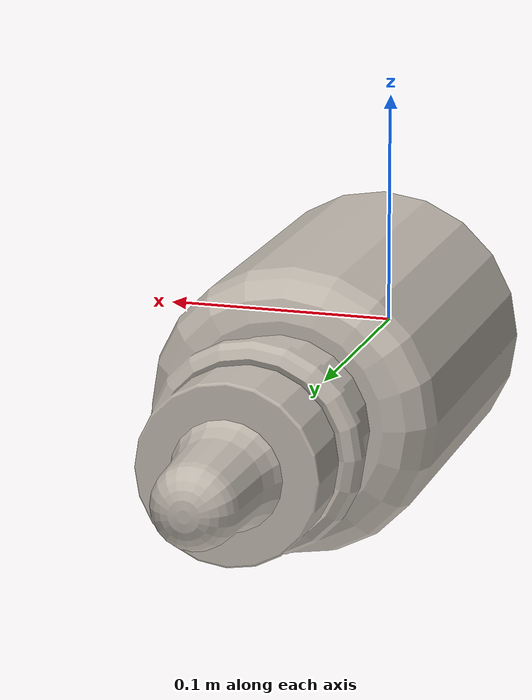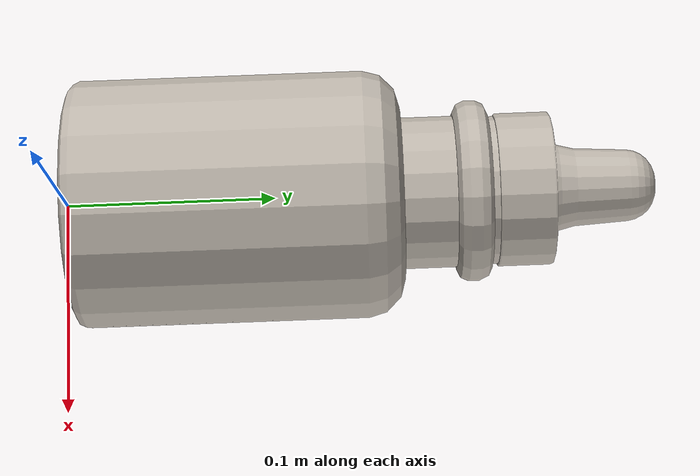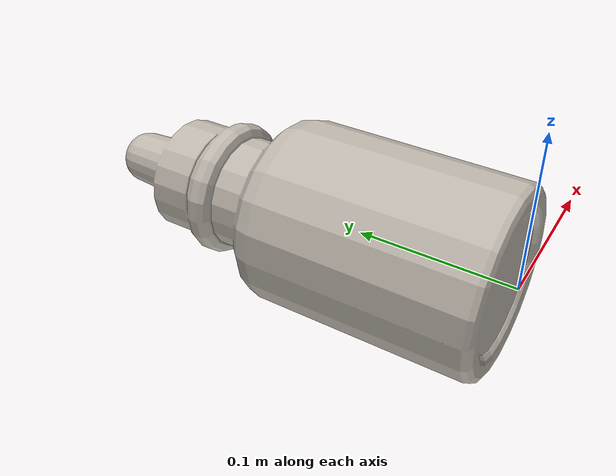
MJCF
<mujoco model="c7cbe0b2ea1c416e8729ea0a200335b8">
  <default>
    <default class="visual">
      <geom group="2" type="mesh" contype="0" conaffinity="0"/>
    </default>
    <default class="collision">
      <geom group="3" type="mesh"/>
    </default>
  </default>
  <asset>
    <texture type="2d" name="material_0" file="material_0.png"/>
    <material name="material_0" texture="material_0" specular="0.4000000000000001" shininess="0.001"/>
    <mesh file="c7cbe0b2ea1c416e8729ea0a200335b8.obj"/>
    <mesh file="c7cbe0b2ea1c416e8729ea0a200335b8_collision_0.obj"/>
    <mesh file="c7cbe0b2ea1c416e8729ea0a200335b8_collision_1.obj"/>
    <mesh file="c7cbe0b2ea1c416e8729ea0a200335b8_collision_2.obj"/>
  </asset>
  <worldbody>
    <body name="c7cbe0b2ea1c416e8729ea0a200335b8">
      <freejoint/>
      <geom material="material_0" mesh="c7cbe0b2ea1c416e8729ea0a200335b8" class="visual"/>
      <geom mesh="c7cbe0b2ea1c416e8729ea0a200335b8_collision_0" rgba="0.8197222863260573 0.7497026176433232 0.5013959950042182 1" class="collision"/>
      <geom mesh="c7cbe0b2ea1c416e8729ea0a200335b8_collision_1" rgba="0.6759522190328625 0.039393020668597734 0.06626869760587006 1" class="collision"/>
      <geom mesh="c7cbe0b2ea1c416e8729ea0a200335b8_collision_2" rgba="0.7198534176825848 0.3202812917761301 0.8963210025855766 1" class="collision"/>
    </body>
  </worldbody>
</mujoco>
